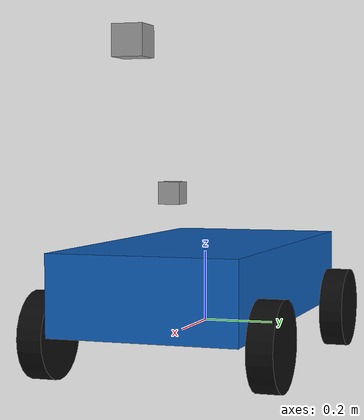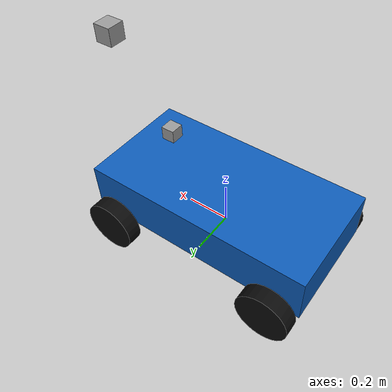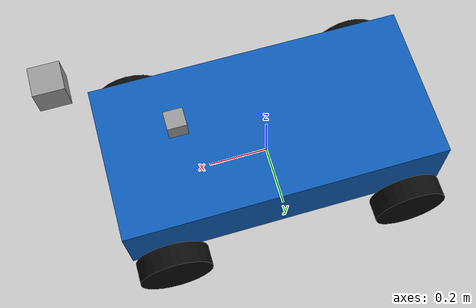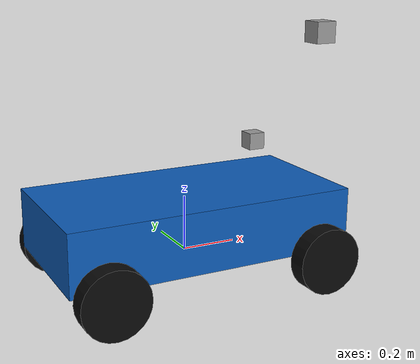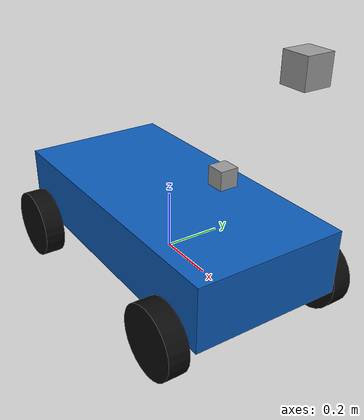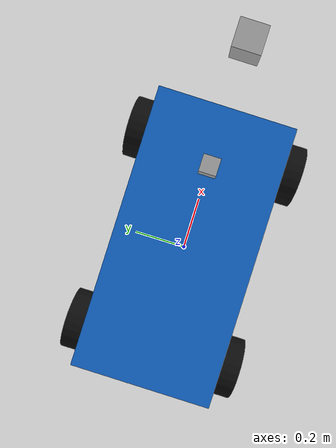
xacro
<?xml version="1.0"?>
<robot xmlns:xacro="http://www.ros.org/wiki/xacro" name="course_ackermann">

  <!-- Параметры, которые можно менять из командной строки: xacro vehicle.urdf.xacro wheel_base:=0.9 -->
  <xacro:arg name="wheel_base" default="0.8"/>
  <xacro:arg name="track_width" default="0.62"/>
  <xacro:arg name="wheel_radius" default="0.12"/>
  <xacro:property name="wheel_base" value="$(arg wheel_base)"/>
  <xacro:property name="track_width" value="$(arg track_width)"/>
  <xacro:property name="wheel_radius" value="$(arg wheel_radius)"/>

  <!-- Остальные размеры и массы (из SDF) -->
  <xacro:property name="wheel_width" value="0.07"/>
  <xacro:property name="wheel_mass" value="0.8"/>
  <xacro:property name="knuckle_mass" value="0.2"/>
  <xacro:property name="body_length" value="1.05"/>
  <xacro:property name="body_width" value="0.52"/>
  <xacro:property name="body_height" value="0.22"/>
  <xacro:property name="body_z" value="0.12"/>
  <xacro:property name="body_mass" value="12.0"/>
  <xacro:property name="steering_limit" value="0.55"/>
  <xacro:property name="sensor_x" value="0.28"/>
  <xacro:property name="sensor_z" value="0.38"/>
  <xacro:property name="sensor_mass" value="0.033333333333"/>
  <xacro:property name="sensor_inertia" value="0.000333333333"/>

  <material name="body_blue"><color rgba="0.05 0.36 0.72 1"/></material>
  <material name="tire_black"><color rgba="0.04 0.04 0.04 1"/></material>
  <material name="sensor_grey"><color rgba="0.6 0.6 0.6 1"/></material>

  <!-- Корпус -->
  <link name="base_link">
    <visual>
      <origin xyz="0 0 ${body_z}" rpy="0 0 0"/>
      <geometry><box size="${body_length} ${body_width} ${body_height}"/></geometry>
      <material name="body_blue"/>
    </visual>
    <collision>
      <origin xyz="0 0 ${body_z}" rpy="0 0 0"/>
      <geometry><box size="${body_length} ${body_width} ${body_height}"/></geometry>
    </collision>
    <inertial>
      <mass value="${body_mass}"/>
      <inertia ixx="0.55" ixy="0" ixz="0" iyy="1.10" iyz="0" izz="1.40"/>
    </inertial>
  </link>

  <!-- Поворотный кулак: поворачивается вокруг вертикальной оси z -->
  <xacro:macro name="steering" params="name y">
    <link name="${name}_knuckle">
      <inertial>
        <mass value="${knuckle_mass}"/>
        <inertia ixx="0.001" ixy="0" ixz="0" iyy="0.001" iyz="0" izz="0.001"/>
      </inertial>
    </link>
    <joint name="${name}_steering_joint" type="revolute">
      <parent link="base_link"/>
      <child link="${name}_knuckle"/>
      <origin xyz="${wheel_base / 2} ${y} 0" rpy="0 0 0"/>
      <axis xyz="0 0 1"/>
      <!-- velocity в SDF нет: 2.0 рад/с взято как разумное допущение -->
      <limit lower="-${steering_limit}" upper="${steering_limit}" effort="25" velocity="2.0"/>
    </joint>
  </xacro:macro>

  <!-- Колесо: цилиндр, ось вращения y, непрерывное сочленение -->
  <xacro:macro name="wheel" params="name parent x y">
    <link name="${name}_wheel">
      <visual>
        <origin xyz="0 0 0" rpy="${pi / 2} 0 0"/>
        <geometry><cylinder radius="${wheel_radius}" length="${wheel_width}"/></geometry>
        <material name="tire_black"/>
      </visual>
      <collision>
        <origin xyz="0 0 0" rpy="${pi / 2} 0 0"/>
        <geometry><cylinder radius="${wheel_radius}" length="${wheel_width}"/></geometry>
      </collision>
      <inertial>
        <mass value="${wheel_mass}"/>
        <inertia ixx="${wheel_mass * (3 * wheel_radius ** 2 + wheel_width ** 2) / 12}" ixy="0" ixz="0"
                 iyy="${wheel_mass * wheel_radius ** 2 / 2}" iyz="0"
                 izz="${wheel_mass * (3 * wheel_radius ** 2 + wheel_width ** 2) / 12}"/>
      </inertial>
    </link>
    <joint name="${name}_wheel_joint" type="continuous">
      <parent link="${parent}"/>
      <child link="${name}_wheel"/>
      <origin xyz="${x} ${y} 0" rpy="0 0 0"/>
      <axis xyz="0 1 0"/>
    </joint>
  </xacro:macro>

  <!-- Датчик: звено и фиксированное сочленение, одинаковое смещение для всех -->
  <xacro:macro name="sensor" params="name parent size">
    <link name="${name}_link">
      <visual>
        <origin xyz="0 0 0" rpy="0 0 0"/>
        <geometry><box size="${size} ${size} ${size}"/></geometry>
        <material name="sensor_grey"/>
      </visual>
      <inertial>
        <mass value="${sensor_mass}"/>
        <inertia ixx="${sensor_inertia}" ixy="0" ixz="0" iyy="${sensor_inertia}" iyz="0" izz="${sensor_inertia}"/>
      </inertial>
    </link>
    <joint name="${name}_joint" type="fixed">
      <parent link="${parent}"/>
      <child link="${name}_link"/>
      <origin xyz="${sensor_x} 0 ${sensor_z}" rpy="0 0 0"/>
    </joint>
  </xacro:macro>

  <xacro:steering name="front_left" y="${track_width / 2}"/>
  <xacro:steering name="front_right" y="${-track_width / 2}"/>

  <xacro:wheel name="front_left" parent="front_left_knuckle" x="0" y="0"/>
  <xacro:wheel name="front_right" parent="front_right_knuckle" x="0" y="0"/>
  <xacro:wheel name="rear_left" parent="base_link" x="${-wheel_base / 2}" y="${track_width / 2}"/>
  <xacro:wheel name="rear_right" parent="base_link" x="${-wheel_base / 2}" y="${-track_width / 2}"/>

  <xacro:sensor name="camera" parent="base_link" size="0.06"/>
  <xacro:sensor name="lidar" parent="camera_link" size="0.08"/>
  <xacro:sensor name="imu" parent="base_link" size="0.04"/>

</robot>
